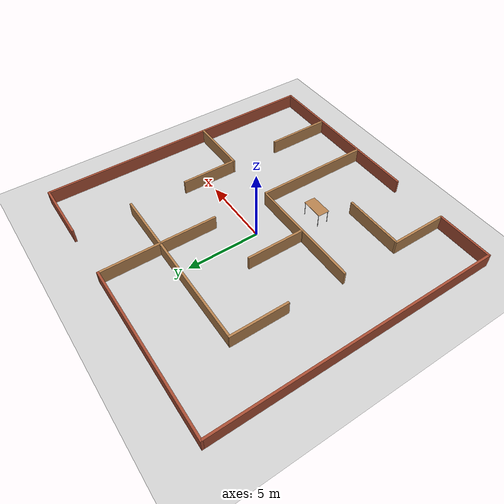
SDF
<sdf version="1.6">
 <world name="default">
  <light name="sun" type="directional">
   <pose>0 0 10 0 -0 0</pose>
   <diffuse>0.8 0.8 0.8 1</diffuse>
   <specular>0.2 0.2 0.2 1</specular>
   <attenuation>
    <range>1000</range>
    <constant>0.9</constant>
    <linear>0.01</linear>
    <quadratic>0.001</quadratic>
   </attenuation>
   <direction>-0.5 0.1 -0.9</direction>
  </light>
  <model name="ground_plane">
   <static>1</static>
   <link name="link">
    <collision name="collision">
     <geometry><plane><normal>0 0 1</normal><size>100 100</size></plane></geometry>
     <surface>
      <contact><collide_bitmask>65535</collide_bitmask></contact>
      <friction><ode><mu>100</mu><mu2>50</mu2></ode></friction>
     </surface>
    </collision>
    <visual name="visual">
     <cast_shadows>0</cast_shadows>
     <geometry><plane><normal>0 0 1</normal><size>100 100</size></plane></geometry>
     <material>
      <script><uri>file://media/materials/scripts/gazebo.material</uri><name>Gazebo/Grey</name></script>
     </material>
    </visual>
   </link>
  </model>
  <gravity>0 0 -9.8</gravity>
  <magnetic_field>6e-06 2.3e-05 -4.2e-05</magnetic_field>
  <atmosphere type="adiabatic"/>
  <physics name="default_physics" default="0" type="ode">
   <max_step_size>0.001</max_step_size>
   <real_time_factor>1</real_time_factor>
   <real_time_update_rate>1000</real_time_update_rate>
  </physics>
  <scene><ambient>0.4 0.4 0.4 1</ambient><background>0.7 0.7 0.7 1</background><shadows>1</shadows></scene>
  <audio><device>default</device></audio>
  <spherical_coordinates>
   <surface_model>EARTH_WGS84</surface_model>
   <latitude_deg>0</latitude_deg>
   <longitude_deg>0</longitude_deg>
   <elevation>0</elevation>
   <heading_deg>0</heading_deg>
  </spherical_coordinates>
  <model name="maze1">
   <pose>0.0767 -0.13732 0 0 -0 0</pose>
   <link name="Wall_100">
    <collision name="Wall_100_Collision">
     <geometry><box><size>12 0.15 1</size></box></geometry>
     <pose>0 0 0.5 0 -0 0</pose>
    </collision>
    <visual name="Wall_100_Visual">
     <pose>0 0 0.5 0 -0 0</pose>
     <geometry><box><size>12 0.15 1</size></box></geometry>
     <material>
      <script><uri>file://media/materials/scripts/gazebo.material</uri><name>Gazebo/Bricks</name></script>
      <ambient>1 1 1 1</ambient>
     </material>
     <meta><layer>0</layer></meta>
    </visual>
    <pose>-4.0495 9.9285 0 0 -0 3.14159</pose>
   </link>
   <link name="Wall_101">
    <collision name="Wall_101_Collision">
     <geometry><box><size>20 0.15 1</size></box></geometry>
     <pose>0 0 0.5 0 -0 0</pose>
    </collision>
    <visual name="Wall_101_Visual">
     <pose>0 0 0.5 0 -0 0</pose>
     <geometry><box><size>20 0.15 1</size></box></geometry>
     <material>
      <script><uri>file://media/materials/scripts/gazebo.material</uri><name>Gazebo/Bricks</name></script>
      <ambient>1 1 1 1</ambient>
     </material>
     <meta><layer>0</layer></meta>
    </visual>
    <pose>-9.9745 0.0035 0 0 -0 -1.5708</pose>
   </link>
   <link name="Wall_102">
    <collision name="Wall_102_Collision">
     <geometry><box><size>4 0.15 1</size></box></geometry>
     <pose>0 0 0.5 0 -0 0</pose>
    </collision>
    <visual name="Wall_102_Visual">
     <pose>0 0 0.5 0 -0 0</pose>
     <geometry><box><size>4 0.15 1</size></box></geometry>
     <material>
      <script><uri>file://media/materials/scripts/gazebo.material</uri><name>Gazebo/Bricks</name></script>
      <ambient>1 1 1 1</ambient>
     </material>
     <meta><layer>0</layer></meta>
    </visual>
    <pose>-8.0495 -9.9215 0 0 -0 0</pose>
   </link>
   <link name="Wall_103">
    <collision name="Wall_103_Collision">
     <geometry><box><size>4 0.15 1</size></box></geometry>
     <pose>0 0 0.5 0 -0 0</pose>
    </collision>
    <visual name="Wall_103_Visual">
     <pose>0 0 0.5 0 -0 0</pose>
     <geometry><box><size>4 0.15 1</size></box></geometry>
     <material>
      <script><uri>file://media/materials/scripts/gazebo.material</uri><name>Gazebo/Wood</name></script>
      <ambient>1 1 1 1</ambient>
     </material>
     <meta><layer>0</layer></meta>
    </visual>
    <pose>-6.1245 -7.9965 0 0 -0 1.5708</pose>
   </link>
   <link name="Wall_104">
    <collision name="Wall_104_Collision">
     <geometry><box><size>4.25 0.15 1</size></box></geometry>
     <pose>0 0 0.5 0 -0 0</pose>
    </collision>
    <visual name="Wall_104_Visual">
     <pose>0 0 0.5 0 -0 0</pose>
     <geometry><box><size>4.25 0.15 1</size></box></geometry>
     <material>
      <script><uri>file://media/materials/scripts/gazebo.material</uri><name>Gazebo/Wood</name></script>
      <ambient>1 1 1 1</ambient>
     </material>
     <meta><layer>0</layer></meta>
    </visual>
    <pose>-4.0745 -6.0715 0 0 -0 0</pose>
   </link>
   <link name="Wall_108">
    <collision name="Wall_108_Collision">
     <geometry><box><size>4 0.15 1</size></box></geometry>
     <pose>0 0 0.5 0 -0 0</pose>
    </collision>
    <visual name="Wall_108_Visual">
     <pose>0 0 0.5 0 -0 0</pose>
     <geometry><box><size>4 0.15 1</size></box></geometry>
     <material>
      <script><uri>file://media/materials/scripts/gazebo.material</uri><name>Gazebo/Wood</name></script>
      <ambient>1 1 1 1</ambient>
     </material>
     <meta><layer>0</layer></meta>
    </visual>
    <pose>-2.1065 0.1015 0 0 -0 -1.5708</pose>
   </link>
   <link name="Wall_110">
    <collision name="Wall_110_Collision">
     <geometry><box><size>8 0.15 1</size></box></geometry>
     <pose>0 0 0.5 0 -0 0</pose>
    </collision>
    <visual name="Wall_110_Visual">
     <pose>0 0 0.5 0 -0 0</pose>
     <geometry><box><size>8 0.15 1</size></box></geometry>
     <material>
      <script><uri>file://media/materials/scripts/gazebo.material</uri><name>Gazebo/Wood</name></script>
      <ambient>1 1 1 1</ambient>
     </material>
     <meta><layer>0</layer></meta>
    </visual>
    <pose>1.9005 -5.9055 0 0 -0 -1.5708</pose>
   </link>
   <link name="Wall_116">
    <collision name="Wall_116_Collision">
     <geometry><box><size>4 0.15 1</size></box></geometry>
     <pose>0 0 0.5 0 -0 0</pose>
    </collision>
    <visual name="Wall_116_Visual">
     <pose>0 0 0.5 0 -0 0</pose>
     <geometry><box><size>4 0.15 1</size></box></geometry>
     <material>
      <script><uri>file://media/materials/scripts/gazebo.material</uri><name>Gazebo/Wood</name></script>
      <ambient>1 1 1 1</ambient>
     </material>
     <meta><layer>0</layer></meta>
    </visual>
    <pose>1.9005 3.9515 0 0 -0 1.5708</pose>
   </link>
   <link name="Wall_121">
    <collision name="Wall_121_Collision">
     <geometry><box><size>4 0.15 1</size></box></geometry>
     <pose>0 0 0.5 0 -0 0</pose>
    </collision>
    <visual name="Wall_121_Visual">
     <pose>0 0 0.5 0 -0 0</pose>
     <geometry><box><size>4 0.15 1</size></box></geometry>
     <material>
      <script><uri>file://media/materials/scripts/gazebo.material</uri><name>Gazebo/Wood</name></script>
      <ambient>1 1 1 1</ambient>
     </material>
     <meta><layer>0</layer></meta>
    </visual>
    <pose>-6.0185 3.9625 0 0 -0 1.5708</pose>
   </link>
   <link name="Wall_122">
    <collision name="Wall_122_Collision">
     <geometry><box><size>8.04652 0.15 1</size></box></geometry>
     <pose>0 0 0.5 0 -0 0</pose>
    </collision>
    <visual name="Wall_122_Visual">
     <pose>0 0 0.5 0 -0 0</pose>
     <geometry><box><size>8.04652 0.15 1</size></box></geometry>
     <material>
      <script><uri>file://media/materials/scripts/gazebo.material</uri><name>Gazebo/Wood</name></script>
      <ambient>1 1 1 1</ambient>
     </material>
     <meta><layer>0</layer></meta>
    </visual>
    <pose>-2.07 5.8875 0 0 -0 0</pose>
   </link>
   <link name="Wall_123">
    <collision name="Wall_123_Collision">
     <geometry><box><size>4.20348 0.15 1</size></box></geometry>
     <pose>0 0 0.5 0 -0 0</pose>
    </collision>
    <visual name="Wall_123_Visual">
     <pose>0 0 0.5 0 -0 0</pose>
     <geometry><box><size>4.20348 0.15 1</size></box></geometry>
     <material>
      <script><uri>file://media/materials/scripts/gazebo.material</uri><name>Gazebo/Wood</name></script>
      <ambient>1 1 1 1</ambient>
     </material>
     <meta><layer>0</layer></meta>
    </visual>
    <pose>3.905 5.8875 0 0 -0 0</pose>
   </link>
   <link name="Wall_129">
    <collision name="Wall_129_Collision">
     <geometry><box><size>4 0.15 1</size></box></geometry>
     <pose>0 0 0.5 0 -0 0</pose>
    </collision>
    <visual name="Wall_129_Visual">
     <pose>0 0 0.5 0 -0 0</pose>
     <geometry><box><size>4 0.15 1</size></box></geometry>
     <material>
      <script><uri>file://media/materials/scripts/gazebo.material</uri><name>Gazebo/Wood</name></script>
      <ambient>1 1 1 1</ambient>
     </material>
     <meta><layer>0</layer></meta>
    </visual>
    <pose>-4.2335 -1.9165 0 0 -0 0</pose>
   </link>
   <link name="Wall_130">
    <collision name="Wall_130_Collision">
     <geometry><box><size>4.25 0.15 1</size></box></geometry>
     <pose>0 0 0.5 0 -0 0</pose>
    </collision>
    <visual name="Wall_130_Visual">
     <pose>0 0 0.5 0 -0 0</pose>
     <geometry><box><size>4.25 0.15 1</size></box></geometry>
     <material>
      <script><uri>file://media/materials/scripts/gazebo.material</uri><name>Gazebo/Wood</name></script>
      <ambient>1 1 1 1</ambient>
     </material>
     <meta><layer>0</layer></meta>
    </visual>
    <pose>-0.2585 -1.9165 0 0 -0 0</pose>
   </link>
   <link name="Wall_132">
    <collision name="Wall_132_Collision">
     <geometry><box><size>4.5 0.15 1</size></box></geometry>
     <pose>0 0 0.5 0 -0 0</pose>
    </collision>
    <visual name="Wall_132_Visual">
     <pose>0 0 0.5 0 -0 0</pose>
     <geometry><box><size>4.5 0.15 1</size></box></geometry>
     <material>
      <script><uri>file://media/materials/scripts/gazebo.material</uri><name>Gazebo/Wood</name></script>
      <ambient>1 1 1 1</ambient>
     </material>
     <meta><layer>0</layer></meta>
    </visual>
    <pose>5.9385 -7.7445 0 0 -0 1.5708</pose>
   </link>
   <link name="Wall_134">
    <collision name="Wall_134_Collision">
     <geometry><box><size>4.25 0.15 1</size></box></geometry>
     <pose>0 0 0.5 0 -0 0</pose>
    </collision>
    <visual name="Wall_134_Visual">
     <pose>0 0 0.5 0 -0 0</pose>
     <geometry><box><size>4.25 0.15 1</size></box></geometry>
     <material>
      <script><uri>file://media/materials/scripts/gazebo.material</uri><name>Gazebo/Wood</name></script>
      <ambient>1 1 1 1</ambient>
     </material>
     <meta><layer>0</layer></meta>
    </visual>
    <pose>7.8895 -1.9165 0 0 -0 3.14159</pose>
   </link>
   <link name="Wall_138">
    <collision name="Wall_138_Collision">
     <geometry><box><size>4.2 0.15 1</size></box></geometry>
     <pose>0 0 0.5 0 -0 0</pose>
    </collision>
    <visual name="Wall_138_Visual">
     <pose>0 0 0.5 0 -0 0</pose>
     <geometry><box><size>4.2 0.15 1</size></box></geometry>
     <material>
      <script><uri>file://media/materials/scripts/gazebo.material</uri><name>Gazebo/Wood</name></script>
      <ambient>1 1 1 1</ambient>
     </material>
     <meta><layer>0</layer></meta>
    </visual>
    <pose>1.8785 7.9125 0 0 -0 1.5708</pose>
   </link>
   <link name="Wall_142">
    <collision name="Wall_142_Collision">
     <geometry><box><size>4 0.15 1</size></box></geometry>
     <pose>0 0 0.5 0 -0 0</pose>
    </collision>
    <visual name="Wall_142_Visual">
     <pose>0 0 0.5 0 -0 0</pose>
     <geometry><box><size>4 0.15 1</size></box></geometry>
     <material>
      <script><uri>file://media/materials/scripts/gazebo.material</uri><name>Gazebo/Wood</name></script>
      <ambient>1 1 1 1</ambient>
     </material>
     <meta><layer>0</layer></meta>
    </visual>
    <pose>5.8395 0.0085 0 0 -0 1.5708</pose>
   </link>
   <link name="Wall_96">
    <collision name="Wall_96_Collision">
     <geometry><box><size>12.25 0.15 1</size></box></geometry>
     <pose>0 0 0.5 0 -0 0</pose>
    </collision>
    <visual name="Wall_96_Visual">
     <pose>0 0 0.5 0 -0 0</pose>
     <geometry><box><size>12.25 0.15 1</size></box></geometry>
     <material>
      <script><uri>file://media/materials/scripts/gazebo.material</uri><name>Gazebo/Bricks</name></script>
      <ambient>1 1 1 1</ambient>
     </material>
     <meta><layer>0</layer></meta>
    </visual>
    <pose>3.9245 -9.9375 0 0 -0 0</pose>
   </link>
   <link name="Wall_97">
    <collision name="Wall_97_Collision">
     <geometry><box><size>20 0.15 1</size></box></geometry>
     <pose>0 0 0.5 0 -0 0</pose>
    </collision>
    <visual name="Wall_97_Visual">
     <pose>0 0 0.5 0 -0 0</pose>
     <geometry><box><size>20 0.15 1</size></box></geometry>
     <material>
      <script><uri>file://media/materials/scripts/gazebo.material</uri><name>Gazebo/Bricks</name></script>
      <ambient>1 1 1 1</ambient>
     </material>
     <meta><layer>0</layer></meta>
    </visual>
    <pose>9.9745 -0.0125 0 0 -0 1.5708</pose>
   </link>
   <link name="Wall_98">
    <collision name="Wall_98_Collision">
     <geometry><box><size>4.25 0.15 1</size></box></geometry>
     <pose>0 0 0.5 0 -0 0</pose>
    </collision>
    <visual name="Wall_98_Visual">
     <pose>0 0 0.5 0 -0 0</pose>
     <geometry><box><size>4.25 0.15 1</size></box></geometry>
     <material>
      <script><uri>file://media/materials/scripts/gazebo.material</uri><name>Gazebo/Bricks</name></script>
      <ambient>1 1 1 1</ambient>
     </material>
     <meta><layer>0</layer></meta>
    </visual>
    <pose>7.9245 9.9125 0 0 -0 3.14159</pose>
   </link>
   <static>1</static>
  </model>
  <model name="table">
   <static>1</static>
   <link name="link">
    <collision name="surface">
     <pose>0 0 1 0 -0 0</pose>
     <geometry><box><size>1.5 0.8 0.03</size></box></geometry>
     <surface><friction><ode><mu>0.6</mu><mu2>0.6</mu2></ode></friction></surface>
    </collision>
    <visual name="visual1">
     <pose>0 0 1 0 -0 0</pose>
     <geometry><box><size>1.5 0.8 0.03</size></box></geometry>
     <material>
      <script><uri>file://media/materials/scripts/gazebo.material</uri><name>Gazebo/Wood</name></script>
     </material>
    </visual>
    <collision name="front_left_leg">
     <pose>0.68 0.38 0.5 0 -0 0</pose>
     <geometry><cylinder><radius>0.02</radius><length>1</length></cylinder></geometry>
    </collision>
    <visual name="front_left_leg">
     <pose>0.68 0.38 0.5 0 -0 0</pose>
     <geometry><cylinder><radius>0.02</radius><length>1</length></cylinder></geometry>
     <material>
      <script><uri>file://media/materials/scripts/gazebo.material</uri><name>Gazebo/Grey</name></script>
     </material>
    </visual>
    <collision name="front_right_leg">
     <pose>0.68 -0.38 0.5 0 -0 0</pose>
     <geometry><cylinder><radius>0.02</radius><length>1</length></cylinder></geometry>
    </collision>
    <visual name="front_right_leg">
     <pose>0.68 -0.38 0.5 0 -0 0</pose>
     <geometry><cylinder><radius>0.02</radius><length>1</length></cylinder></geometry>
     <material>
      <script><uri>file://media/materials/scripts/gazebo.material</uri><name>Gazebo/Grey</name></script>
     </material>
    </visual>
    <collision name="back_right_leg">
     <pose>-0.68 -0.38 0.5 0 -0 0</pose>
     <geometry><cylinder><radius>0.02</radius><length>1</length></cylinder></geometry>
    </collision>
    <visual name="back_right_leg">
     <pose>-0.68 -0.38 0.5 0 -0 0</pose>
     <geometry><cylinder><radius>0.02</radius><length>1</length></cylinder></geometry>
     <material>
      <script><uri>file://media/materials/scripts/gazebo.material</uri><name>Gazebo/Grey</name></script>
     </material>
    </visual>
    <collision name="back_left_leg">
     <pose>-0.68 0.38 0.5 0 -0 0</pose>
     <geometry><cylinder><radius>0.02</radius><length>1</length></cylinder></geometry>
    </collision>
    <visual name="back_left_leg">
     <pose>-0.68 0.38 0.5 0 -0 0</pose>
     <geometry><cylinder><radius>0.02</radius><length>1</length></cylinder></geometry>
     <material>
      <script><uri>file://media/materials/scripts/gazebo.material</uri><name>Gazebo/Grey</name></script>
     </material>
    </visual>
   </link>
   <pose>-0.943026 -4.0494 0 0 -0 0</pose>
  </model>
  <plugin filename="libcollision_map_creator.so" name="collision_map_creator"/>
 </world>
</sdf>
